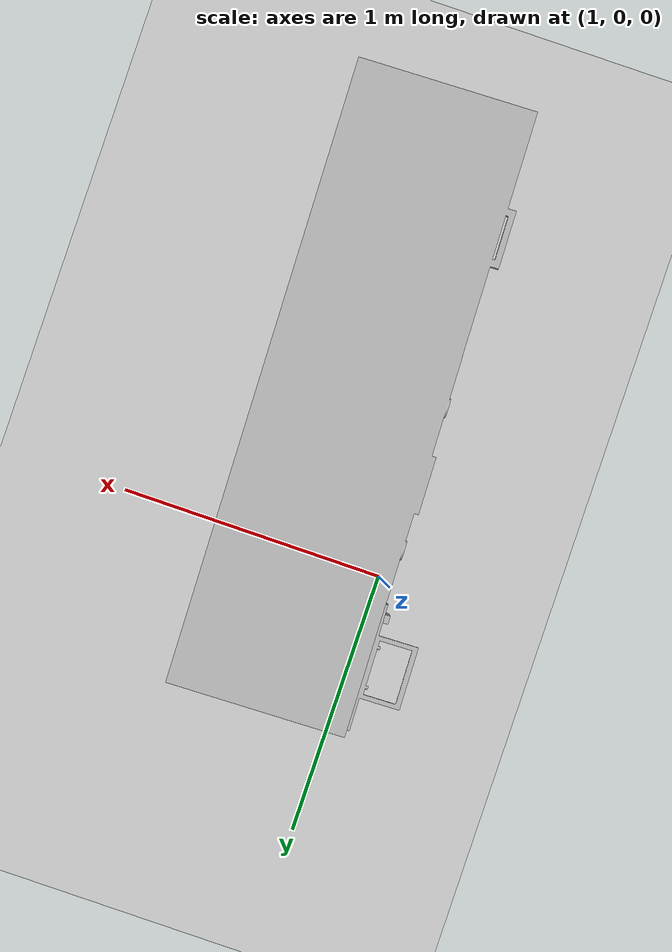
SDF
<sdf version='1.6'>
  <world name='default'>
    <physics name='default_physics' default='0' type='ode'>
      <ode>
        <solver>
          <type>quick</type>
          <iters>20</iters>
          <sor>1</sor>
          <use_dynamic_moi_rescaling>0</use_dynamic_moi_rescaling>
        </solver>
        <constraints>
          <cfm>0</cfm>
          <erp>0.2</erp>
          <contact_max_correcting_vel>100</contact_max_correcting_vel>
          <contact_surface_layer>0</contact_surface_layer>
        </constraints>
      </ode>
      <real_time_update_rate>1000</real_time_update_rate>
      <max_step_size>0.001</max_step_size>
      <real_time_factor>1</real_time_factor>
    </physics>
    <light name='light1' type='directional'>
      <cast_shadows>1</cast_shadows>
      <pose frame=''>-2 0 4 0 -0 0</pose>
      <diffuse>1 1 1 1</diffuse>
      <specular>0.1 0.1 0.1 1</specular>
      <attenuation>
        <range>20</range>
        <constant>0.9</constant>
        <linear>0.01</linear>
        <quadratic>0.001</quadratic>
      </attenuation>
      <direction>0.2 0 -1</direction>
    </light>
    <model name='ground_plane'>
      <static>1</static>
      <link name='link'>
        <collision name='collision'>
          <geometry>
            <plane>
              <normal>0 0 1</normal>
              <size>100 100</size>
            </plane>
          </geometry>
          <surface>
            <contact>
              <collide_bitmask>65535</collide_bitmask>
              <ode/>
            </contact>
            <friction>
              <ode>
                <mu>100</mu>
                <mu2>50</mu2>
              </ode>
              <torsional>
                <ode/>
              </torsional>
            </friction>
            <bounce/>
          </surface>
          <max_contacts>10</max_contacts>
        </collision>
        <visual name='visual'>
          <cast_shadows>0</cast_shadows>
          <geometry>
            <plane>
              <normal>0 0 1</normal>
              <size>100 100</size>
            </plane>
          </geometry>
          <material>
            <script>
              <uri>file://media/materials/scripts/gazebo.material</uri>
              <name>Gazebo/Grey</name>
            </script>
          </material>
        </visual>
        <self_collide>0</self_collide>
        <enable_wind>0</enable_wind>
        <kinematic>0</kinematic>
      </link>
    </model>

    <model name="kitchen">
    <pose>1 0.04 0.04 0 0 -1.5429</pose>

        <link name="kitchen">
            <pose>0 0 0 0 0 0</pose>
            <inertial>
              <inertia>
                <ixx>2.501</ixx>
                <ixy>0</ixy>
                <ixz>0</ixz>
                <iyy>2.501</iyy>
                <iyz>0</iyz>
                <izz>5</izz>
              </inertia>
              <mass>120.0</mass>
          </inertial>
            <visual name="kitchen_visual">
                <geometry>
                    <mesh>
                     <uri>model://kitchen/meshes/kitchen.dae</uri>
                     <scale>1 1 1</scale>
                    </mesh>
                </geometry>
            </visual>
            <collision name="kitchen_visual">
                <geometry>
                    <mesh>
                     <uri>model://kitchen/meshes/kitchen.dae</uri>
                     <scale>1 1 1</scale>
                    </mesh>
                </geometry>
            </collision>
        </link>

        <joint name="world_fixed" type="fixed">
        <parent>world</parent>
        <child>kitchen</child>
        </joint>

        <link name="drawer">
            <pose>0 0 0 0 0 0</pose>
            <inertial>
              <inertia>
                <ixx>0.201</ixx>
                <ixy>0</ixy>
                <ixz>0</ixz>
                <iyy>0.201</iyy>
                <iyz>0</iyz>
                <izz>0.5</izz>
              </inertia>
              <mass>2.0</mass>
          </inertial>
            <visual name="drawer_visual">
                <geometry>
                    <mesh>
                     <uri>model://kitchen/meshes/drawer.dae</uri>
                     <scale>1 1 1</scale>
                    </mesh>
                </geometry>
            </visual>
            <collision name="drawer_collision">
                <geometry>
                    <mesh>
                     <uri>model://kitchen/meshes/drawer.dae</uri>
                     <scale>1 1 1</scale>
                    </mesh>
                </geometry>
            </collision>
        </link>

        <joint name="drawer_joint" type="prismatic">
        <child>drawer</child>
        <parent>kitchen</parent>
        <axis>
          <limit>
            <lower>-0.6</lower>
            <upper>0</upper>
          </limit>
          <xyz>0 1 0</xyz>
        </axis>
       </joint>
    </model>

    <gui fullscreen='0'>
      <camera name='user_camera'>
        <pose frame=''>0.429277 -0.126008 2.28837 0 1.5698 0.072179</pose>
        <view_controller>orbit</view_controller>
        <projection_type>perspective</projection_type>
      </camera>
    </gui>
    <gravity>0 0 -9.81</gravity>
    <magnetic_field>6e-06 2.3e-05 -4.2e-05</magnetic_field>
    <atmosphere type='adiabatic'/>
    <scene>
      <ambient>0.4 0.4 0.4 1</ambient>
      <background>0.7 0.7 0.7 1</background>
      <shadows>1</shadows>
    </scene>
    <audio>
      <device>default</device>
    </audio>
    <wind/>
    <spherical_coordinates>
      <surface_model>EARTH_WGS84</surface_model>
      <latitude_deg>0</latitude_deg>
      <longitude_deg>0</longitude_deg>
      <elevation>0</elevation>
      <heading_deg>0</heading_deg>
    </spherical_coordinates>

    <model name='camera_A'>
      <pose>0.3 0.8 1.4 0 0.8 -0.6</pose>
      <static>1</static>

      <frame name="camera_A_frame" attached_to="world">
      <pose>0.3 0.8 1.4 0 0.8 -0.6</pose>
      </frame>

      <link name='camera_A_left_link'>
          <pose relative_to='camera_A_frame'>0 -0.03 0 0 0 0</pose>
          <visual name='visual'>
          <geometry>
            <box>
              <size>0 0 0</size>
            </box>
          </geometry>
        </visual>
        <sensor name='zed_B_left' type='camera'>
          <visualize>0</visualize>
          <always_on>1</always_on>
          <update_rate>100</update_rate>
          <camera>
            <horizontal_fov>1.7633</horizontal_fov>
            <image>
              <format>R8G8B8</format>
              <width>1280</width>
              <height>720</height>
            </image>
            <clip>
              <near>0.02</near>
              <far>300</far>
            </clip>
            <noise>
              <type>gaussian</type>
              <mean>0</mean>
              <stddev>0.007</stddev>
            </noise>
            <distortion>
              <k1>-0.0436936</k1>
              <k2>0.0146165</k2>
              <p1>-0.00657332</p1>
              <p2>-0.0002169</p2>
              <k3>8.4328e-05</k3>
              <center>0.5 0.5</center>
            </distortion>
          </camera>
          <plugin name='camera_controller' filename='libgazebo_ros_camera.so'>
            <cameraName>zed2_A/zed_node/left_raw</cameraName>
            <imageTopicName>image_raw_color</imageTopicName>
            <cameraInfoTopicName>camera_info</cameraInfoTopicName>
            <distortionK1>-0.043693598</distortionK1>
            <distortionK2>0.0146164996</distortionK2>
            <distortionT1>-0.006573319</distortionT1>
            <distortionT2>-0.000216900</distortionT2>
            <distortionK3>0.000084328</distortionK3>
            <CxPrime>648.5</CxPrime>
            <Cx>648.5</Cx>
            <Cy>366.8340148925781</Cy>
            <hackBaseline>0.0</hackBaseline>
          </plugin>
        </sensor>
        <self_collide>0</self_collide>
        <enable_wind>0</enable_wind>
        <kinematic>0</kinematic>
      </link>

      <link name='camera_A_right_link'>
      <pose relative_to='camera_A_frame'>0 0.03 0 0 0 0</pose>
          <visual name='visual'>
          <geometry>
            <box>
              <size>0 0 0</size>
            </box>
          </geometry>
        </visual>
        <sensor name='zed_B_right' type='camera'>
          <visualize>0</visualize>
          <always_on>1</always_on>
          <update_rate>100</update_rate>
          <camera>
            <horizontal_fov>1.7633</horizontal_fov>
            <image>
              <format>R8G8B8</format>
              <width>1280</width>
              <height>720</height>
            </image>
            <clip>
              <near>0.02</near>
              <far>300</far>
            </clip>
            <noise>
              <type>gaussian</type>
              <mean>0</mean>
              <stddev>0.007</stddev>
            </noise>
            <distortion>
              <k1>-0.0436936</k1>
              <k2>0.0146165</k2>
              <p1>-0.00657332</p1>
              <p2>-0.0002169</p2>
              <k3>8.4328e-05</k3>
              <center>0.5 0.5</center>
            </distortion>
          </camera>
          <plugin name='camera_controller' filename='libgazebo_ros_camera.so'>
            <cameraName>zed2_A/zed_node/right_raw</cameraName>
            <imageTopicName>image_raw_color</imageTopicName>
            <cameraInfoTopicName>camera_info</cameraInfoTopicName>
            <distortionK1>-0.043693598</distortionK1>
            <distortionK2>0.0146164996</distortionK2>
            <distortionT1>-0.006573319</distortionT1>
            <distortionT2>-0.000216900</distortionT2>
            <distortionK3>0.000084328</distortionK3>
            <CxPrime>648.5</CxPrime>
            <Cx>648.5</Cx>
            <Cy>366.8340148925781</Cy>
            <hackBaseline>0.0</hackBaseline>
          </plugin>
        </sensor>
        <self_collide>0</self_collide>
        <enable_wind>0</enable_wind>
        <kinematic>0</kinematic>
      </link>
    </model>

    <model name='camera_B'>
      <pose>0.3 -0.8 1.4 0 0.8 0.6</pose>
      <static>1</static>

      <frame name="camera_B_frame" attached_to="world">
      <pose>0.3 -0.8 1.4 0 0.8 0.6</pose>
      </frame>

      <link name='camera_B_left_link'>
          <pose relative_to='camera_B_frame'>0 -0.04 0 0 0 0</pose>
          <visual name='visual'>
          <geometry>
            <box>
              <size>0 0 0</size>
            </box>
          </geometry>
        </visual>
        <sensor name='zed_B_left' type='camera'>
          <visualize>0</visualize>
          <always_on>1</always_on>
          <update_rate>100</update_rate>
          <camera>
            <horizontal_fov>1.7633</horizontal_fov>
            <image>
              <format>R8G8B8</format>
              <width>1280</width>
              <height>720</height>
            </image>
            <clip>
              <near>0.02</near>
              <far>300</far>
            </clip>
            <noise>
              <type>gaussian</type>
              <mean>0</mean>
              <stddev>0.007</stddev>
            </noise>
            <distortion>
              <k1>-0.0436936</k1>
              <k2>0.0146165</k2>
              <p1>-0.00657332</p1>
              <p2>-0.0002169</p2>
              <k3>8.4328e-05</k3>
              <center>0.5 0.5</center>
            </distortion>
          </camera>
          <plugin name='camera_controller' filename='libgazebo_ros_camera.so'>
            <cameraName>zed2_B/zed_node/left_raw</cameraName>
            <imageTopicName>image_raw_color</imageTopicName>
            <cameraInfoTopicName>camera_info</cameraInfoTopicName>
            <distortionK1>-0.043693598</distortionK1>
            <distortionK2>0.0146164996</distortionK2>
            <distortionT1>-0.006573319</distortionT1>
            <distortionT2>-0.000216900</distortionT2>
            <distortionK3>0.000084328</distortionK3>
            <CxPrime>648.5</CxPrime>
            <Cx>648.5</Cx>
            <Cy>366.8340148925781</Cy>
            <hackBaseline>0.0</hackBaseline>
          </plugin>
        </sensor>
        <self_collide>0</self_collide>
        <enable_wind>0</enable_wind>
        <kinematic>0</kinematic>
      </link>

      <link name='camera_B_right_link'>
      <pose relative_to='camera_B_frame'>0 0.04 0 0 0 0</pose>
          <visual name='visual'>
          <geometry>
            <box>
              <size>0 0 0</size>
            </box>
          </geometry>
        </visual>
        <sensor name='zed_B_right' type='camera'>
          <visualize>0</visualize>
          <always_on>1</always_on>
          <update_rate>100</update_rate>
          <camera>
            <horizontal_fov>1.7633</horizontal_fov>
            <image>
              <format>R8G8B8</format>
              <width>1280</width>
              <height>720</height>
            </image>
            <clip>
              <near>0.02</near>
              <far>300</far>
            </clip>
            <noise>
              <type>gaussian</type>
              <mean>0</mean>
              <stddev>0.007</stddev>
            </noise>
            <distortion>
              <k1>-0.0436936</k1>
              <k2>0.0146165</k2>
              <p1>-0.00657332</p1>
              <p2>-0.0002169</p2>
              <k3>8.4328e-05</k3>
              <center>0.5 0.5</center>
            </distortion>
          </camera>
          <plugin name='camera_controller' filename='libgazebo_ros_camera.so'>
            <cameraName>zed2_B/zed_node/right_raw</cameraName>
            <imageTopicName>image_raw_color</imageTopicName>
            <cameraInfoTopicName>camera_info</cameraInfoTopicName>
            <distortionK1>-0.043693598</distortionK1>
            <distortionK2>0.0146164996</distortionK2>
            <distortionT1>-0.006573319</distortionT1>
            <distortionT2>-0.000216900</distortionT2>
            <distortionK3>0.000084328</distortionK3>
            <CxPrime>648.5</CxPrime>
            <Cx>648.5</Cx>
            <Cy>366.8340148925781</Cy>
            <hackBaseline>0.0</hackBaseline>
          </plugin>
        </sensor>
        <self_collide>0</self_collide>
        <enable_wind>0</enable_wind>
        <kinematic>0</kinematic>
      </link>
    </model>
  </world>
</sdf>
